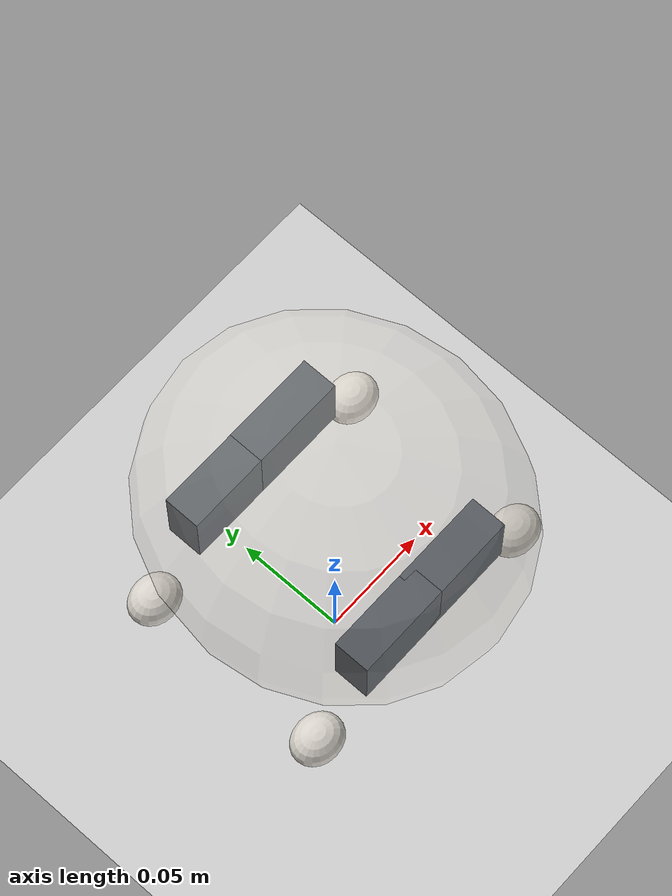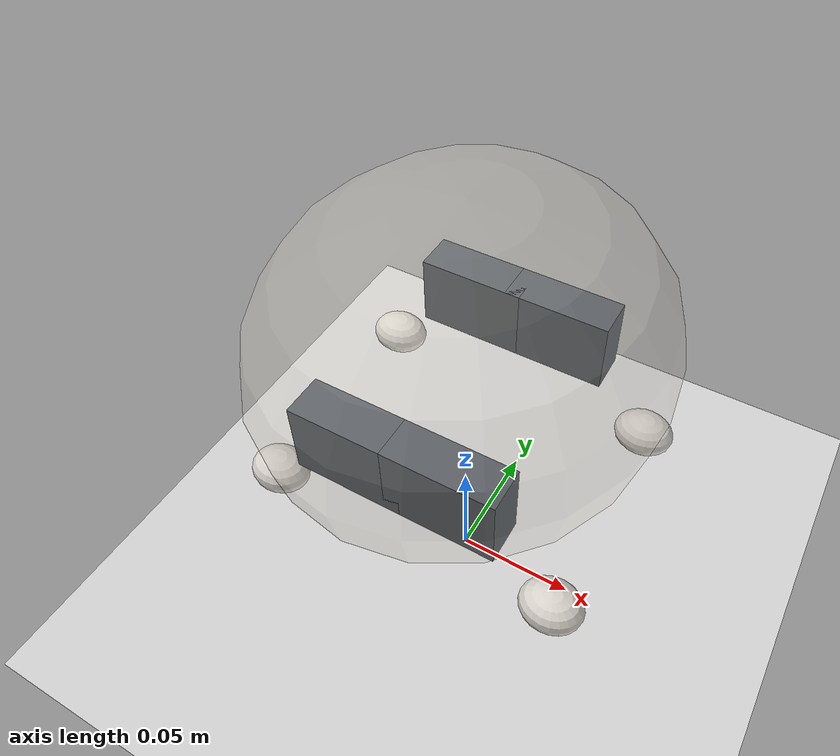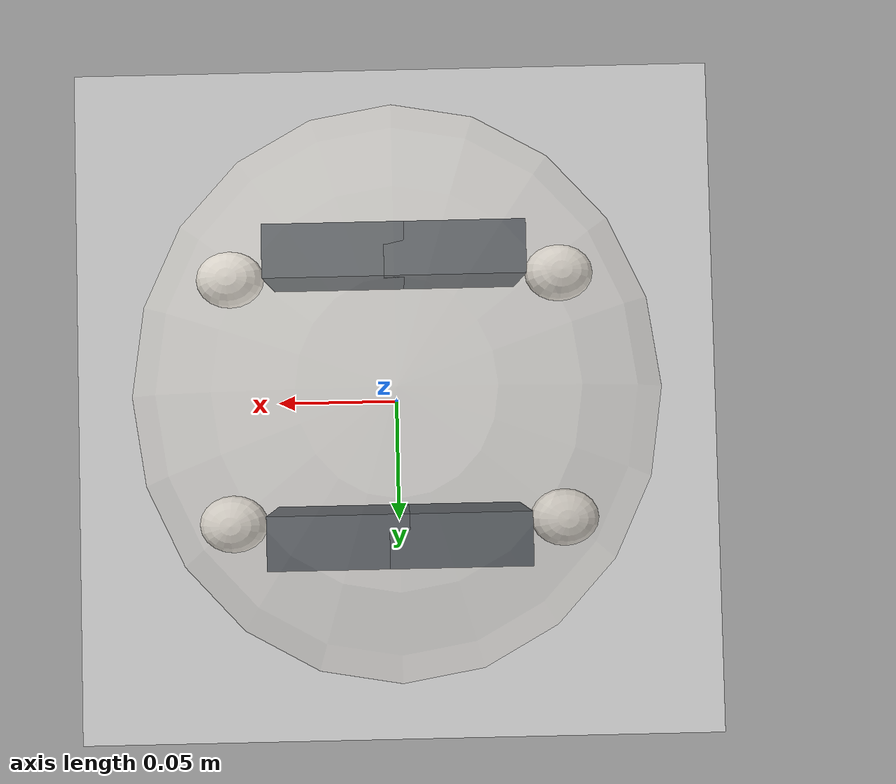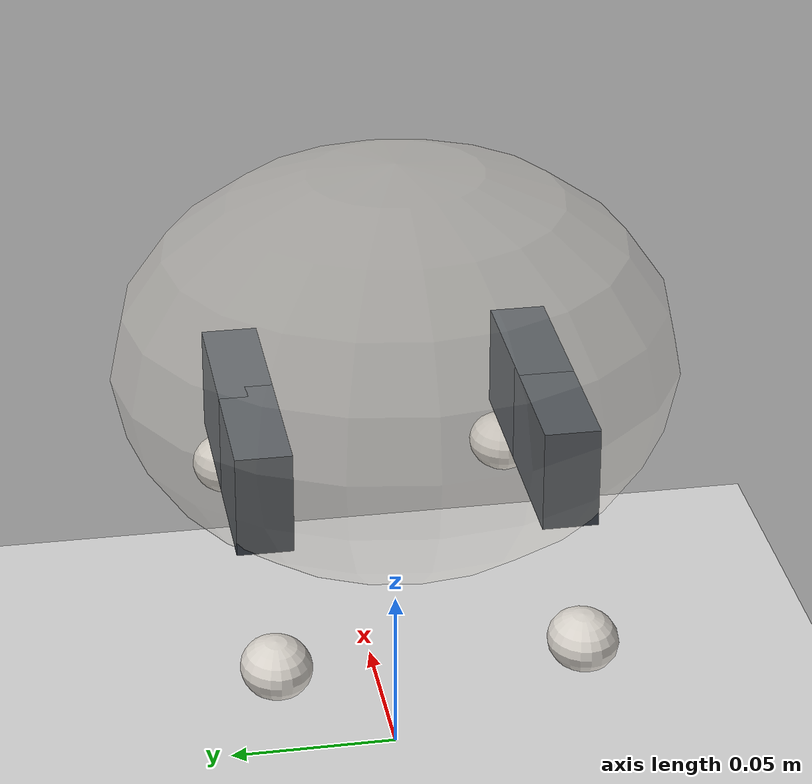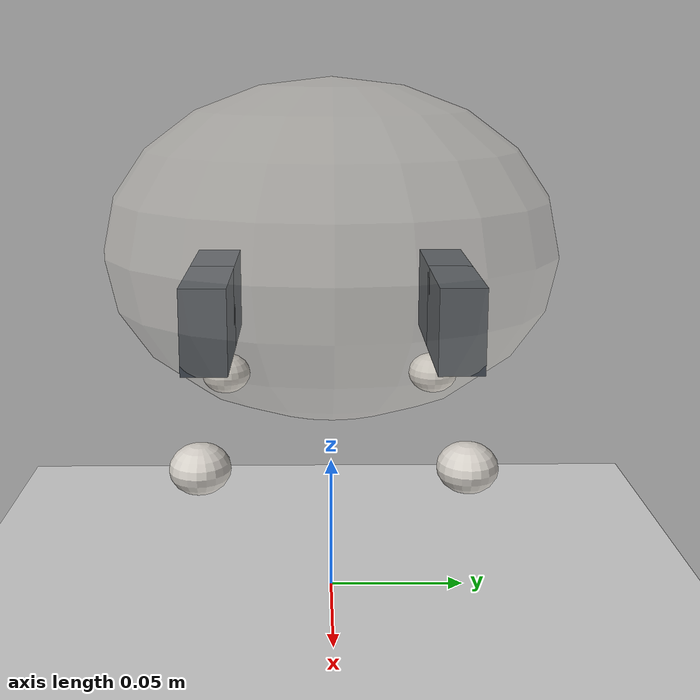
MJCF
<mujoco model="Pebble_V3F">
  <compiler angle="degree" coordinate="local"/>
  <option timestep="0.002" gravity="0 0 -9.81" integrator="implicitfast"/>
  <default>
    <geom friction="0.9 0.02 0.002" condim="4"/>
    <joint damping="0.02" armature="0.00002"/>
  </default>

  <worldbody>
    <geom name="floor" type="plane" size="2 2 0.1" rgba="0.82 0.82 0.82 1"/>
    <body name="pebble" pos="0 0 0.060">
      <freejoint name="pebble_free"/>
      <inertial pos="0 0 0.045" mass="0.90" diaginertia="0.0018 0.0020 0.0022"/>
      <geom name="body_collision" type="ellipsoid" size="0.074 0.081 0.060" pos="0 0 0.070" rgba="0.93 0.90 0.84 0.25"/>

      <body name="cassette_FL" pos="0.018 0.043 0.048">
        <joint name="splay_FL" type="hinge" axis="1 0 0" range="-10 10" damping="0.05"/>
        <geom name="cassette_FL_geom" type="box" size="0.021 0.008 0.015" rgba="0.25 0.28 0.32 1"/>
        <body name="crank_body_FL" pos="0 0 -0.0115">
          <joint name="crank_FL" type="hinge" axis="0 1 0" range="220 310" damping="0.015"/>
          <geom type="cylinder" size="0.006 0.002" quat="0.7071 0.7071 0 0" rgba="0.72 0.60 0.22 1"/>
        </body>
        <body name="paw_proxy_FL" pos="0.040 0 -0.040">
          <joint name="shock_FL" type="slide" axis="0 0 1" range="0 0.005" stiffness="10000" damping="25"/>
          <geom name="paw_FL" type="ellipsoid" size="0.012 0.010 0.008" rgba="0.85 0.83 0.80 1"/>
        </body>
      </body>

      <body name="cassette_FR" pos="0.018 -0.043 0.048">
        <joint name="splay_FR" type="hinge" axis="1 0 0" range="-10 10" damping="0.05"/>
        <geom name="cassette_FR_geom" type="box" size="0.021 0.008 0.015" rgba="0.25 0.28 0.32 1"/>
        <body name="crank_body_FR" pos="0 0 -0.0115">
          <joint name="crank_FR" type="hinge" axis="0 1 0" range="220 310" damping="0.015"/>
          <geom type="cylinder" size="0.006 0.002" quat="0.7071 0.7071 0 0" rgba="0.72 0.60 0.22 1"/>
        </body>
        <body name="paw_proxy_FR" pos="0.040 0 -0.040">
          <joint name="shock_FR" type="slide" axis="0 0 1" range="0 0.005" stiffness="10000" damping="25"/>
          <geom name="paw_FR" type="ellipsoid" size="0.012 0.010 0.008" rgba="0.85 0.83 0.80 1"/>
        </body>
      </body>

      <body name="cassette_RL" pos="-0.018 0.043 0.048">
        <joint name="splay_RL" type="hinge" axis="1 0 0" range="-10 10" damping="0.05"/>
        <geom name="cassette_RL_geom" type="box" size="0.021 0.008 0.015" rgba="0.25 0.28 0.32 1"/>
        <body name="crank_body_RL" pos="0 0 -0.0115">
          <joint name="crank_RL" type="hinge" axis="0 1 0" range="220 310" damping="0.015"/>
          <geom type="cylinder" size="0.006 0.002" quat="0.7071 0.7071 0 0" rgba="0.72 0.60 0.22 1"/>
        </body>
        <body name="paw_proxy_RL" pos="-0.040 0 -0.040">
          <joint name="shock_RL" type="slide" axis="0 0 1" range="0 0.005" stiffness="10000" damping="25"/>
          <geom name="paw_RL" type="ellipsoid" size="0.012 0.010 0.008" rgba="0.85 0.83 0.80 1"/>
        </body>
      </body>

      <body name="cassette_RR" pos="-0.018 -0.043 0.048">
        <joint name="splay_RR" type="hinge" axis="1 0 0" range="-10 10" damping="0.05"/>
        <geom name="cassette_RR_geom" type="box" size="0.021 0.008 0.015" rgba="0.25 0.28 0.32 1"/>
        <body name="crank_body_RR" pos="0 0 -0.0115">
          <joint name="crank_RR" type="hinge" axis="0 1 0" range="220 310" damping="0.015"/>
          <geom type="cylinder" size="0.006 0.002" quat="0.7071 0.7071 0 0" rgba="0.72 0.60 0.22 1"/>
        </body>
        <body name="paw_proxy_RR" pos="-0.040 0 -0.040">
          <joint name="shock_RR" type="slide" axis="0 0 1" range="0 0.005" stiffness="10000" damping="25"/>
          <geom name="paw_RR" type="ellipsoid" size="0.012 0.010 0.008" rgba="0.85 0.83 0.80 1"/>
        </body>
      </body>
    </body>
  </worldbody>

  <equality>
    <joint name="mirror_front_splay" joint1="splay_FR" joint2="splay_FL" polycoef="0 -1 0 0 0" solref="0.01 1"/>
    <joint name="mirror_rear_splay" joint1="splay_RR" joint2="splay_RL" polycoef="0 -1 0 0 0" solref="0.01 1"/>
  </equality>

  <actuator>
    <motor name="motor_FL" joint="crank_FL" gear="1" ctrlrange="-1 1" ctrllimited="true" forcerange="-0.2354 0.2354" forcelimited="true"/>
    <motor name="motor_FR" joint="crank_FR" gear="1" ctrlrange="-1 1" ctrllimited="true" forcerange="-0.2354 0.2354" forcelimited="true"/>
    <motor name="motor_RL" joint="crank_RL" gear="1" ctrlrange="-1 1" ctrllimited="true" forcerange="-0.2354 0.2354" forcelimited="true"/>
    <motor name="motor_RR" joint="crank_RR" gear="1" ctrlrange="-1 1" ctrllimited="true" forcerange="-0.2354 0.2354" forcelimited="true"/>
    <position name="splay_front_servo" joint="splay_FL" kp="8" ctrlrange="-0.174533 0.174533" ctrllimited="true" forcerange="-0.2157 0.2157" forcelimited="true"/>
    <position name="splay_rear_servo" joint="splay_RL" kp="8" ctrlrange="-0.174533 0.174533" ctrllimited="true" forcerange="-0.2157 0.2157" forcelimited="true"/>
  </actuator>
</mujoco>
